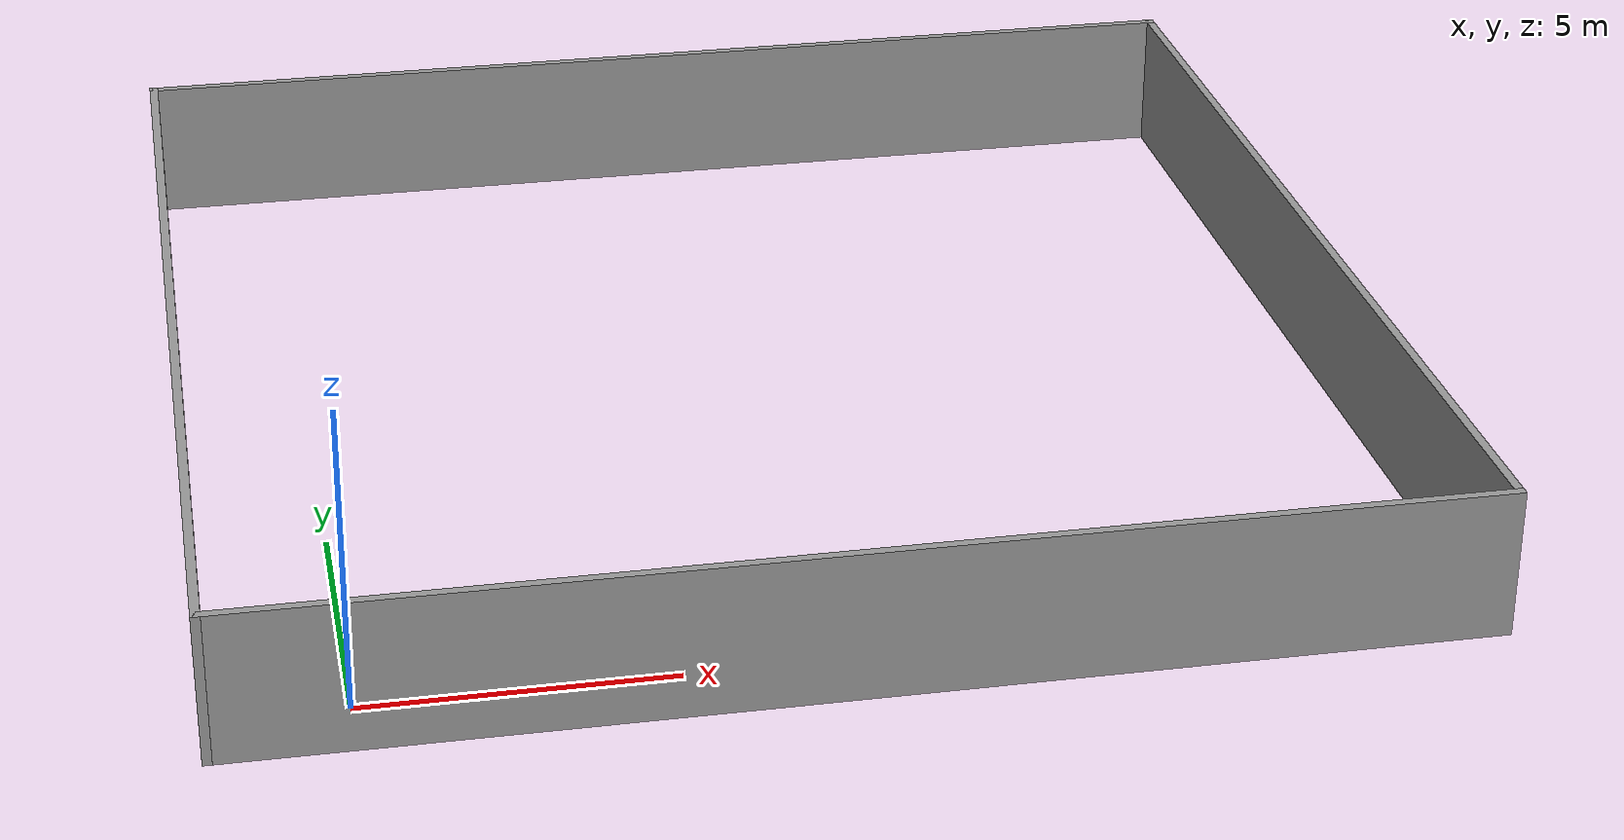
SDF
<?xml version='1.0'?>
<sdf version='1.6'>
  <model name='room'>
    <pose frame=''>7.745 8.845 0 0 -0 0</pose>
    <link name='Wall_0'>
      <collision name='Wall_0_Collision'>
        <geometry>
          <box>
            <size>20 0.15 2.5</size>
          </box>
        </geometry>
        <pose frame=''>0 0 1.25 0 -0 0</pose>
      </collision>
      <visual name='Wall_0_Visual'>
        <pose frame=''>0 0 1.25 0 -0 0</pose>
        <geometry>
          <box>
            <size>20 0.15 2.5</size>
          </box>
        </geometry>
        <material>
          <script>
            <uri>file://media/materials/scripts/gazebo.material</uri>
            <name>Gazebo/Grey</name>
          </script>
          <ambient>1 1 1 1</ambient>
        </material>
        <meta>
          <layer>0</layer>
        </meta>
      </visual>
      <pose frame=''>-9.925 0 0 0 -0 1.5708</pose>
    </link>
    <link name='Wall_1'>
      <collision name='Wall_1_Collision'>
        <geometry>
          <box>
            <size>20 0.15 2.5</size>
          </box>
        </geometry>
        <pose frame=''>0 0 1.25 0 -0 0</pose>
      </collision>
      <visual name='Wall_1_Visual'>
        <pose frame=''>0 0 1.25 0 -0 0</pose>
        <geometry>
          <box>
            <size>20 0.15 2.5</size>
          </box>
        </geometry>
        <material>
          <script>
            <uri>file://media/materials/scripts/gazebo.material</uri>
            <name>Gazebo/Grey</name>
          </script>
          <ambient>1 1 1 1</ambient>
        </material>
        <meta>
          <layer>0</layer>
        </meta>
      </visual>
      <pose frame=''>0 9.925 0 0 -0 0</pose>
    </link>
    <link name='Wall_3'>
      <collision name='Wall_3_Collision'>
        <geometry>
          <box>
            <size>20 0.15 2.5</size>
          </box>
        </geometry>
        <pose frame=''>0 0 1.25 0 -0 0</pose>
      </collision>
      <visual name='Wall_3_Visual'>
        <pose frame=''>0 0 1.25 0 -0 0</pose>
        <geometry>
          <box>
            <size>20 0.15 2.5</size>
          </box>
        </geometry>
        <material>
          <script>
            <uri>file://media/materials/scripts/gazebo.material</uri>
            <name>Gazebo/Grey</name>
          </script>
          <ambient>1 1 1 1</ambient>
        </material>
        <meta>
          <layer>0</layer>
        </meta>
      </visual>
      <pose frame=''>9.925 0 0 0 0 -1.5708</pose>
    </link>
    <link name='Wall_8'>
      <collision name='Wall_8_Collision'>
        <geometry>
          <box>
            <size>20 0.15 2.5</size>
          </box>
        </geometry>
        <pose frame=''>0 0 1.25 0 -0 0</pose>
      </collision>
      <visual name='Wall_8_Visual'>
        <pose frame=''>0 0 1.25 0 -0 0</pose>
        <geometry>
          <box>
            <size>20 0.15 2.5</size>
          </box>
        </geometry>
        <material>
          <script>
            <uri>file://media/materials/scripts/gazebo.material</uri>
            <name>Gazebo/Grey</name>
          </script>
          <ambient>1 1 1 1</ambient>
        </material>
        <meta>
          <layer>0</layer>
        </meta>
      </visual>
      <pose frame=''>0 -9.925 0 0 -0 3.14159</pose>
    </link>
    <static>1</static>
  </model>
</sdf>
